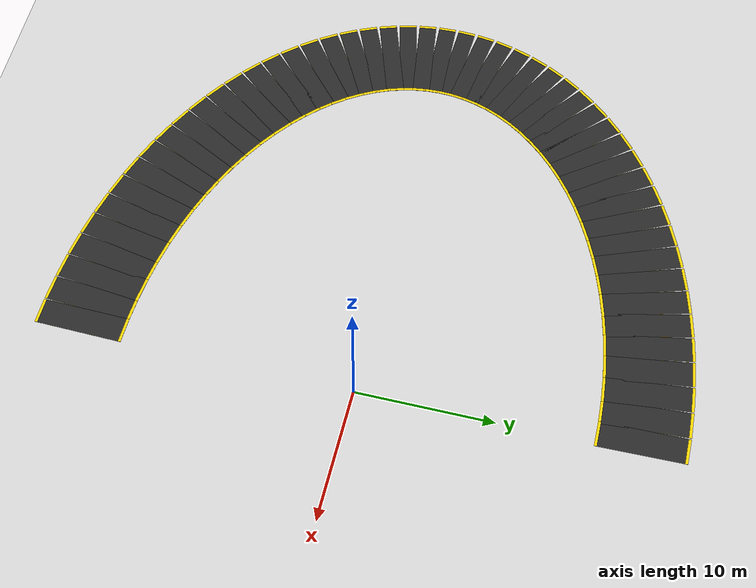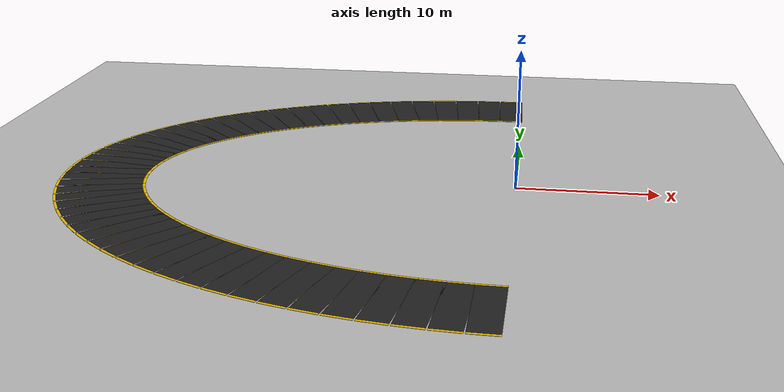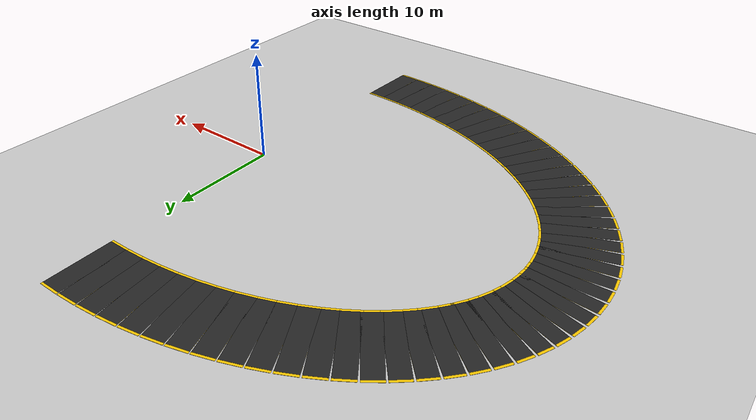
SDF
<sdf version="1.7">
 <world name="custom_road_world">
  <include><uri>https://fuel.ignitionrobotics.org/1.0/openrobotics/models/Ground Plane</uri></include>
  <include><uri>https://fuel.ignitionrobotics.org/1.0/openrobotics/models/Sun</uri></include>
  <model name="elliptical_road">
   <static>true</static>
   <link name="seg_25">
    <pose>-0.942 19.980 0.01 0 0 -3.121</pose>
    <visual name="yellow_base_25">
     <pose>0 0 0.001 0 0 0</pose>
     <geometry><box><size>1.914 6.4 0.02</size></box></geometry>
     <material>
      <ambient>1.0 0.8 0.0 1.0</ambient>
      <diffuse>1.0 0.8 0.0 1.0</diffuse>
      <specular>0.1 0.1 0.1 1.0</specular>
     </material>
    </visual>
    <visual name="asphalt_top_25">
     <pose>0 0 0.002 0 0 0</pose>
     <geometry><box><size>1.914 6.0 0.02</size></box></geometry>
     <material>
      <ambient>0.15 0.15 0.15 1.0</ambient>
      <diffuse>0.15 0.15 0.15 1.0</diffuse>
      <specular>0.05 0.05 0.05 1.0</specular>
     </material>
    </visual>
    <collision name="collision_25">
     <pose>0 0 0.002 0 0 0</pose>
     <geometry><box><size>1.914 6.0 0.02</size></box></geometry>
    </collision>
   </link>
   <link name="seg_26">
    <pose>-2.822 19.901 0.01 0 0 -3.079</pose>
    <visual name="yellow_base_26">
     <pose>0 0 0.001 0 0 0</pose>
     <geometry><box><size>1.910 6.4 0.02</size></box></geometry>
     <material>
      <ambient>1.0 0.8 0.0 1.0</ambient>
      <diffuse>1.0 0.8 0.0 1.0</diffuse>
      <specular>0.1 0.1 0.1 1.0</specular>
     </material>
    </visual>
    <visual name="asphalt_top_26">
     <pose>0 0 0.002 0 0 0</pose>
     <geometry><box><size>1.910 6.0 0.02</size></box></geometry>
     <material>
      <ambient>0.15 0.15 0.15 1.0</ambient>
      <diffuse>0.15 0.15 0.15 1.0</diffuse>
      <specular>0.05 0.05 0.05 1.0</specular>
     </material>
    </visual>
    <collision name="collision_26">
     <pose>0 0 0.002 0 0 0</pose>
     <geometry><box><size>1.910 6.0 0.02</size></box></geometry>
    </collision>
   </link>
   <link name="seg_27">
    <pose>-4.691 19.744 0.01 0 0 -3.036</pose>
    <visual name="yellow_base_27">
     <pose>0 0 0.001 0 0 0</pose>
     <geometry><box><size>1.902 6.4 0.02</size></box></geometry>
     <material>
      <ambient>1.0 0.8 0.0 1.0</ambient>
      <diffuse>1.0 0.8 0.0 1.0</diffuse>
      <specular>0.1 0.1 0.1 1.0</specular>
     </material>
    </visual>
    <visual name="asphalt_top_27">
     <pose>0 0 0.002 0 0 0</pose>
     <geometry><box><size>1.902 6.0 0.02</size></box></geometry>
     <material>
      <ambient>0.15 0.15 0.15 1.0</ambient>
      <diffuse>0.15 0.15 0.15 1.0</diffuse>
      <specular>0.05 0.05 0.05 1.0</specular>
     </material>
    </visual>
    <collision name="collision_27">
     <pose>0 0 0.002 0 0 0</pose>
     <geometry><box><size>1.902 6.0 0.02</size></box></geometry>
    </collision>
   </link>
   <link name="seg_28">
    <pose>-6.541 19.509 0.01 0 0 -2.994</pose>
    <visual name="yellow_base_28">
     <pose>0 0 0.001 0 0 0</pose>
     <geometry><box><size>1.890 6.4 0.02</size></box></geometry>
     <material>
      <ambient>1.0 0.8 0.0 1.0</ambient>
      <diffuse>1.0 0.8 0.0 1.0</diffuse>
      <specular>0.1 0.1 0.1 1.0</specular>
     </material>
    </visual>
    <visual name="asphalt_top_28">
     <pose>0 0 0.002 0 0 0</pose>
     <geometry><box><size>1.890 6.0 0.02</size></box></geometry>
     <material>
      <ambient>0.15 0.15 0.15 1.0</ambient>
      <diffuse>0.15 0.15 0.15 1.0</diffuse>
      <specular>0.05 0.05 0.05 1.0</specular>
     </material>
    </visual>
    <collision name="collision_28">
     <pose>0 0 0.002 0 0 0</pose>
     <geometry><box><size>1.890 6.0 0.02</size></box></geometry>
    </collision>
   </link>
   <link name="seg_29">
    <pose>-8.366 19.196 0.01 0 0 -2.950</pose>
    <visual name="yellow_base_29">
     <pose>0 0 0.001 0 0 0</pose>
     <geometry><box><size>1.873 6.4 0.02</size></box></geometry>
     <material>
      <ambient>1.0 0.8 0.0 1.0</ambient>
      <diffuse>1.0 0.8 0.0 1.0</diffuse>
      <specular>0.1 0.1 0.1 1.0</specular>
     </material>
    </visual>
    <visual name="asphalt_top_29">
     <pose>0 0 0.002 0 0 0</pose>
     <geometry><box><size>1.873 6.0 0.02</size></box></geometry>
     <material>
      <ambient>0.15 0.15 0.15 1.0</ambient>
      <diffuse>0.15 0.15 0.15 1.0</diffuse>
      <specular>0.05 0.05 0.05 1.0</specular>
     </material>
    </visual>
    <collision name="collision_29">
     <pose>0 0 0.002 0 0 0</pose>
     <geometry><box><size>1.873 6.0 0.02</size></box></geometry>
    </collision>
   </link>
   <link name="seg_30">
    <pose>-10.157 18.808 0.01 0 0 -2.906</pose>
    <visual name="yellow_base_30">
     <pose>0 0 0.001 0 0 0</pose>
     <geometry><box><size>1.854 6.4 0.02</size></box></geometry>
     <material>
      <ambient>1.0 0.8 0.0 1.0</ambient>
      <diffuse>1.0 0.8 0.0 1.0</diffuse>
      <specular>0.1 0.1 0.1 1.0</specular>
     </material>
    </visual>
    <visual name="asphalt_top_30">
     <pose>0 0 0.002 0 0 0</pose>
     <geometry><box><size>1.854 6.0 0.02</size></box></geometry>
     <material>
      <ambient>0.15 0.15 0.15 1.0</ambient>
      <diffuse>0.15 0.15 0.15 1.0</diffuse>
      <specular>0.05 0.05 0.05 1.0</specular>
     </material>
    </visual>
    <collision name="collision_30">
     <pose>0 0 0.002 0 0 0</pose>
     <geometry><box><size>1.854 6.0 0.02</size></box></geometry>
    </collision>
   </link>
   <link name="seg_31">
    <pose>-11.909 18.346 0.01 0 0 -2.861</pose>
    <visual name="yellow_base_31">
     <pose>0 0 0.001 0 0 0</pose>
     <geometry><box><size>1.830 6.4 0.02</size></box></geometry>
     <material>
      <ambient>1.0 0.8 0.0 1.0</ambient>
      <diffuse>1.0 0.8 0.0 1.0</diffuse>
      <specular>0.1 0.1 0.1 1.0</specular>
     </material>
    </visual>
    <visual name="asphalt_top_31">
     <pose>0 0 0.002 0 0 0</pose>
     <geometry><box><size>1.830 6.0 0.02</size></box></geometry>
     <material>
      <ambient>0.15 0.15 0.15 1.0</ambient>
      <diffuse>0.15 0.15 0.15 1.0</diffuse>
      <specular>0.05 0.05 0.05 1.0</specular>
     </material>
    </visual>
    <collision name="collision_31">
     <pose>0 0 0.002 0 0 0</pose>
     <geometry><box><size>1.830 6.0 0.02</size></box></geometry>
    </collision>
   </link>
   <link name="seg_32">
    <pose>-13.613 17.811 0.01 0 0 -2.814</pose>
    <visual name="yellow_base_32">
     <pose>0 0 0.001 0 0 0</pose>
     <geometry><box><size>1.803 6.4 0.02</size></box></geometry>
     <material>
      <ambient>1.0 0.8 0.0 1.0</ambient>
      <diffuse>1.0 0.8 0.0 1.0</diffuse>
      <specular>0.1 0.1 0.1 1.0</specular>
     </material>
    </visual>
    <visual name="asphalt_top_32">
     <pose>0 0 0.002 0 0 0</pose>
     <geometry><box><size>1.803 6.0 0.02</size></box></geometry>
     <material>
      <ambient>0.15 0.15 0.15 1.0</ambient>
      <diffuse>0.15 0.15 0.15 1.0</diffuse>
      <specular>0.05 0.05 0.05 1.0</specular>
     </material>
    </visual>
    <collision name="collision_32">
     <pose>0 0 0.002 0 0 0</pose>
     <geometry><box><size>1.803 6.0 0.02</size></box></geometry>
    </collision>
   </link>
   <link name="seg_33">
    <pose>-15.264 17.206 0.01 0 0 -2.766</pose>
    <visual name="yellow_base_33">
     <pose>0 0 0.001 0 0 0</pose>
     <geometry><box><size>1.774 6.4 0.02</size></box></geometry>
     <material>
      <ambient>1.0 0.8 0.0 1.0</ambient>
      <diffuse>1.0 0.8 0.0 1.0</diffuse>
      <specular>0.1 0.1 0.1 1.0</specular>
     </material>
    </visual>
    <visual name="asphalt_top_33">
     <pose>0 0 0.002 0 0 0</pose>
     <geometry><box><size>1.774 6.0 0.02</size></box></geometry>
     <material>
      <ambient>0.15 0.15 0.15 1.0</ambient>
      <diffuse>0.15 0.15 0.15 1.0</diffuse>
      <specular>0.05 0.05 0.05 1.0</specular>
     </material>
    </visual>
    <collision name="collision_33">
     <pose>0 0 0.002 0 0 0</pose>
     <geometry><box><size>1.774 6.0 0.02</size></box></geometry>
    </collision>
   </link>
   <link name="seg_34">
    <pose>-16.854 16.533 0.01 0 0 -2.716</pose>
    <visual name="yellow_base_34">
     <pose>0 0 0.001 0 0 0</pose>
     <geometry><box><size>1.741 6.4 0.02</size></box></geometry>
     <material>
      <ambient>1.0 0.8 0.0 1.0</ambient>
      <diffuse>1.0 0.8 0.0 1.0</diffuse>
      <specular>0.1 0.1 0.1 1.0</specular>
     </material>
    </visual>
    <visual name="asphalt_top_34">
     <pose>0 0 0.002 0 0 0</pose>
     <geometry><box><size>1.741 6.0 0.02</size></box></geometry>
     <material>
      <ambient>0.15 0.15 0.15 1.0</ambient>
      <diffuse>0.15 0.15 0.15 1.0</diffuse>
      <specular>0.05 0.05 0.05 1.0</specular>
     </material>
    </visual>
    <collision name="collision_34">
     <pose>0 0 0.002 0 0 0</pose>
     <geometry><box><size>1.741 6.0 0.02</size></box></geometry>
    </collision>
   </link>
   <link name="seg_35">
    <pose>-18.378 15.795 0.01 0 0 -2.664</pose>
    <visual name="yellow_base_35">
     <pose>0 0 0.001 0 0 0</pose>
     <geometry><box><size>1.706 6.4 0.02</size></box></geometry>
     <material>
      <ambient>1.0 0.8 0.0 1.0</ambient>
      <diffuse>1.0 0.8 0.0 1.0</diffuse>
      <specular>0.1 0.1 0.1 1.0</specular>
     </material>
    </visual>
    <visual name="asphalt_top_35">
     <pose>0 0 0.002 0 0 0</pose>
     <geometry><box><size>1.706 6.0 0.02</size></box></geometry>
     <material>
      <ambient>0.15 0.15 0.15 1.0</ambient>
      <diffuse>0.15 0.15 0.15 1.0</diffuse>
      <specular>0.05 0.05 0.05 1.0</specular>
     </material>
    </visual>
    <collision name="collision_35">
     <pose>0 0 0.002 0 0 0</pose>
     <geometry><box><size>1.706 6.0 0.02</size></box></geometry>
    </collision>
   </link>
   <link name="seg_36">
    <pose>-19.830 14.995 0.01 0 0 -2.610</pose>
    <visual name="yellow_base_36">
     <pose>0 0 0.001 0 0 0</pose>
     <geometry><box><size>1.670 6.4 0.02</size></box></geometry>
     <material>
      <ambient>1.0 0.8 0.0 1.0</ambient>
      <diffuse>1.0 0.8 0.0 1.0</diffuse>
      <specular>0.1 0.1 0.1 1.0</specular>
     </material>
    </visual>
    <visual name="asphalt_top_36">
     <pose>0 0 0.002 0 0 0</pose>
     <geometry><box><size>1.670 6.0 0.02</size></box></geometry>
     <material>
      <ambient>0.15 0.15 0.15 1.0</ambient>
      <diffuse>0.15 0.15 0.15 1.0</diffuse>
      <specular>0.05 0.05 0.05 1.0</specular>
     </material>
    </visual>
    <collision name="collision_36">
     <pose>0 0 0.002 0 0 0</pose>
     <geometry><box><size>1.670 6.0 0.02</size></box></geometry>
    </collision>
   </link>
   <link name="seg_37">
    <pose>-21.203 14.135 0.01 0 0 -2.554</pose>
    <visual name="yellow_base_37">
     <pose>0 0 0.001 0 0 0</pose>
     <geometry><box><size>1.632 6.4 0.02</size></box></geometry>
     <material>
      <ambient>1.0 0.8 0.0 1.0</ambient>
      <diffuse>1.0 0.8 0.0 1.0</diffuse>
      <specular>0.1 0.1 0.1 1.0</specular>
     </material>
    </visual>
    <visual name="asphalt_top_37">
     <pose>0 0 0.002 0 0 0</pose>
     <geometry><box><size>1.632 6.0 0.02</size></box></geometry>
     <material>
      <ambient>0.15 0.15 0.15 1.0</ambient>
      <diffuse>0.15 0.15 0.15 1.0</diffuse>
      <specular>0.05 0.05 0.05 1.0</specular>
     </material>
    </visual>
    <collision name="collision_37">
     <pose>0 0 0.002 0 0 0</pose>
     <geometry><box><size>1.632 6.0 0.02</size></box></geometry>
    </collision>
   </link>
   <link name="seg_38">
    <pose>-22.492 13.220 0.01 0 0 -2.494</pose>
    <visual name="yellow_base_38">
     <pose>0 0 0.001 0 0 0</pose>
     <geometry><box><size>1.593 6.4 0.02</size></box></geometry>
     <material>
      <ambient>1.0 0.8 0.0 1.0</ambient>
      <diffuse>1.0 0.8 0.0 1.0</diffuse>
      <specular>0.1 0.1 0.1 1.0</specular>
     </material>
    </visual>
    <visual name="asphalt_top_38">
     <pose>0 0 0.002 0 0 0</pose>
     <geometry><box><size>1.593 6.0 0.02</size></box></geometry>
     <material>
      <ambient>0.15 0.15 0.15 1.0</ambient>
      <diffuse>0.15 0.15 0.15 1.0</diffuse>
      <specular>0.05 0.05 0.05 1.0</specular>
     </material>
    </visual>
    <collision name="collision_38">
     <pose>0 0 0.002 0 0 0</pose>
     <geometry><box><size>1.593 6.0 0.02</size></box></geometry>
    </collision>
   </link>
   <link name="seg_39">
    <pose>-23.693 12.252 0.01 0 0 -2.432</pose>
    <visual name="yellow_base_39">
     <pose>0 0 0.001 0 0 0</pose>
     <geometry><box><size>1.553 6.4 0.02</size></box></geometry>
     <material>
      <ambient>1.0 0.8 0.0 1.0</ambient>
      <diffuse>1.0 0.8 0.0 1.0</diffuse>
      <specular>0.1 0.1 0.1 1.0</specular>
     </material>
    </visual>
    <visual name="asphalt_top_39">
     <pose>0 0 0.002 0 0 0</pose>
     <geometry><box><size>1.553 6.0 0.02</size></box></geometry>
     <material>
      <ambient>0.15 0.15 0.15 1.0</ambient>
      <diffuse>0.15 0.15 0.15 1.0</diffuse>
      <specular>0.05 0.05 0.05 1.0</specular>
     </material>
    </visual>
    <collision name="collision_39">
     <pose>0 0 0.002 0 0 0</pose>
     <geometry><box><size>1.553 6.0 0.02</size></box></geometry>
    </collision>
   </link>
   <link name="seg_40">
    <pose>-24.800 11.236 0.01 0 0 -2.366</pose>
    <visual name="yellow_base_40">
     <pose>0 0 0.001 0 0 0</pose>
     <geometry><box><size>1.514 6.4 0.02</size></box></geometry>
     <material>
      <ambient>1.0 0.8 0.0 1.0</ambient>
      <diffuse>1.0 0.8 0.0 1.0</diffuse>
      <specular>0.1 0.1 0.1 1.0</specular>
     </material>
    </visual>
    <visual name="asphalt_top_40">
     <pose>0 0 0.002 0 0 0</pose>
     <geometry><box><size>1.514 6.0 0.02</size></box></geometry>
     <material>
      <ambient>0.15 0.15 0.15 1.0</ambient>
      <diffuse>0.15 0.15 0.15 1.0</diffuse>
      <specular>0.05 0.05 0.05 1.0</specular>
     </material>
    </visual>
    <collision name="collision_40">
     <pose>0 0 0.002 0 0 0</pose>
     <geometry><box><size>1.514 6.0 0.02</size></box></geometry>
    </collision>
   </link>
   <link name="seg_41">
    <pose>-25.810 10.176 0.01 0 0 -2.296</pose>
    <visual name="yellow_base_41">
     <pose>0 0 0.001 0 0 0</pose>
     <geometry><box><size>1.476 6.4 0.02</size></box></geometry>
     <material>
      <ambient>1.0 0.8 0.0 1.0</ambient>
      <diffuse>1.0 0.8 0.0 1.0</diffuse>
      <specular>0.1 0.1 0.1 1.0</specular>
     </material>
    </visual>
    <visual name="asphalt_top_41">
     <pose>0 0 0.002 0 0 0</pose>
     <geometry><box><size>1.476 6.0 0.02</size></box></geometry>
     <material>
      <ambient>0.15 0.15 0.15 1.0</ambient>
      <diffuse>0.15 0.15 0.15 1.0</diffuse>
      <specular>0.05 0.05 0.05 1.0</specular>
     </material>
    </visual>
    <collision name="collision_41">
     <pose>0 0 0.002 0 0 0</pose>
     <geometry><box><size>1.476 6.0 0.02</size></box></geometry>
    </collision>
   </link>
   <link name="seg_42">
    <pose>-26.717 9.075 0.01 0 0 -2.223</pose>
    <visual name="yellow_base_42">
     <pose>0 0 0.001 0 0 0</pose>
     <geometry><box><size>1.439 6.4 0.02</size></box></geometry>
     <material>
      <ambient>1.0 0.8 0.0 1.0</ambient>
      <diffuse>1.0 0.8 0.0 1.0</diffuse>
      <specular>0.1 0.1 0.1 1.0</specular>
     </material>
    </visual>
    <visual name="asphalt_top_42">
     <pose>0 0 0.002 0 0 0</pose>
     <geometry><box><size>1.439 6.0 0.02</size></box></geometry>
     <material>
      <ambient>0.15 0.15 0.15 1.0</ambient>
      <diffuse>0.15 0.15 0.15 1.0</diffuse>
      <specular>0.05 0.05 0.05 1.0</specular>
     </material>
    </visual>
    <collision name="collision_42">
     <pose>0 0 0.002 0 0 0</pose>
     <geometry><box><size>1.439 6.0 0.02</size></box></geometry>
    </collision>
   </link>
   <link name="seg_43">
    <pose>-27.519 7.939 0.01 0 0 -2.147</pose>
    <visual name="yellow_base_43">
     <pose>0 0 0.001 0 0 0</pose>
     <geometry><box><size>1.405 6.4 0.02</size></box></geometry>
     <material>
      <ambient>1.0 0.8 0.0 1.0</ambient>
      <diffuse>1.0 0.8 0.0 1.0</diffuse>
      <specular>0.1 0.1 0.1 1.0</specular>
     </material>
    </visual>
    <visual name="asphalt_top_43">
     <pose>0 0 0.002 0 0 0</pose>
     <geometry><box><size>1.405 6.0 0.02</size></box></geometry>
     <material>
      <ambient>0.15 0.15 0.15 1.0</ambient>
      <diffuse>0.15 0.15 0.15 1.0</diffuse>
      <specular>0.05 0.05 0.05 1.0</specular>
     </material>
    </visual>
    <collision name="collision_43">
     <pose>0 0 0.002 0 0 0</pose>
     <geometry><box><size>1.405 6.0 0.02</size></box></geometry>
    </collision>
   </link>
   <link name="seg_44">
    <pose>-28.212 6.771 0.01 0 0 -2.066</pose>
    <visual name="yellow_base_44">
     <pose>0 0 0.001 0 0 0</pose>
     <geometry><box><size>1.374 6.4 0.02</size></box></geometry>
     <material>
      <ambient>1.0 0.8 0.0 1.0</ambient>
      <diffuse>1.0 0.8 0.0 1.0</diffuse>
      <specular>0.1 0.1 0.1 1.0</specular>
     </material>
    </visual>
    <visual name="asphalt_top_44">
     <pose>0 0 0.002 0 0 0</pose>
     <geometry><box><size>1.374 6.0 0.02</size></box></geometry>
     <material>
      <ambient>0.15 0.15 0.15 1.0</ambient>
      <diffuse>0.15 0.15 0.15 1.0</diffuse>
      <specular>0.05 0.05 0.05 1.0</specular>
     </material>
    </visual>
    <collision name="collision_44">
     <pose>0 0 0.002 0 0 0</pose>
     <geometry><box><size>1.374 6.0 0.02</size></box></geometry>
    </collision>
   </link>
   <link name="seg_45">
    <pose>-28.795 5.577 0.01 0 0 -1.982</pose>
    <visual name="yellow_base_45">
     <pose>0 0 0.001 0 0 0</pose>
     <geometry><box><size>1.346 6.4 0.02</size></box></geometry>
     <material>
      <ambient>1.0 0.8 0.0 1.0</ambient>
      <diffuse>1.0 0.8 0.0 1.0</diffuse>
      <specular>0.1 0.1 0.1 1.0</specular>
     </material>
    </visual>
    <visual name="asphalt_top_45">
     <pose>0 0 0.002 0 0 0</pose>
     <geometry><box><size>1.346 6.0 0.02</size></box></geometry>
     <material>
      <ambient>0.15 0.15 0.15 1.0</ambient>
      <diffuse>0.15 0.15 0.15 1.0</diffuse>
      <specular>0.05 0.05 0.05 1.0</specular>
     </material>
    </visual>
    <collision name="collision_45">
     <pose>0 0 0.002 0 0 0</pose>
     <geometry><box><size>1.346 6.0 0.02</size></box></geometry>
    </collision>
   </link>
   <link name="seg_46">
    <pose>-29.263 4.361 0.01 0 0 -1.894</pose>
    <visual name="yellow_base_46">
     <pose>0 0 0.001 0 0 0</pose>
     <geometry><box><size>1.323 6.4 0.02</size></box></geometry>
     <material>
      <ambient>1.0 0.8 0.0 1.0</ambient>
      <diffuse>1.0 0.8 0.0 1.0</diffuse>
      <specular>0.1 0.1 0.1 1.0</specular>
     </material>
    </visual>
    <visual name="asphalt_top_46">
     <pose>0 0 0.002 0 0 0</pose>
     <geometry><box><size>1.323 6.0 0.02</size></box></geometry>
     <material>
      <ambient>0.15 0.15 0.15 1.0</ambient>
      <diffuse>0.15 0.15 0.15 1.0</diffuse>
      <specular>0.05 0.05 0.05 1.0</specular>
     </material>
    </visual>
    <collision name="collision_46">
     <pose>0 0 0.002 0 0 0</pose>
     <geometry><box><size>1.323 6.0 0.02</size></box></geometry>
    </collision>
   </link>
   <link name="seg_47">
    <pose>-29.616 3.127 0.01 0 0 -1.804</pose>
    <visual name="yellow_base_47">
     <pose>0 0 0.001 0 0 0</pose>
     <geometry><box><size>1.306 6.4 0.02</size></box></geometry>
     <material>
      <ambient>1.0 0.8 0.0 1.0</ambient>
      <diffuse>1.0 0.8 0.0 1.0</diffuse>
      <specular>0.1 0.1 0.1 1.0</specular>
     </material>
    </visual>
    <visual name="asphalt_top_47">
     <pose>0 0 0.002 0 0 0</pose>
     <geometry><box><size>1.306 6.0 0.02</size></box></geometry>
     <material>
      <ambient>0.15 0.15 0.15 1.0</ambient>
      <diffuse>0.15 0.15 0.15 1.0</diffuse>
      <specular>0.05 0.05 0.05 1.0</specular>
     </material>
    </visual>
    <collision name="collision_47">
     <pose>0 0 0.002 0 0 0</pose>
     <geometry><box><size>1.306 6.0 0.02</size></box></geometry>
    </collision>
   </link>
   <link name="seg_48">
    <pose>-29.852 1.881 0.01 0 0 -1.712</pose>
    <visual name="yellow_base_48">
     <pose>0 0 0.001 0 0 0</pose>
     <geometry><box><size>1.293 6.4 0.02</size></box></geometry>
     <material>
      <ambient>1.0 0.8 0.0 1.0</ambient>
      <diffuse>1.0 0.8 0.0 1.0</diffuse>
      <specular>0.1 0.1 0.1 1.0</specular>
     </material>
    </visual>
    <visual name="asphalt_top_48">
     <pose>0 0 0.002 0 0 0</pose>
     <geometry><box><size>1.293 6.0 0.02</size></box></geometry>
     <material>
      <ambient>0.15 0.15 0.15 1.0</ambient>
      <diffuse>0.15 0.15 0.15 1.0</diffuse>
      <specular>0.05 0.05 0.05 1.0</specular>
     </material>
    </visual>
    <collision name="collision_48">
     <pose>0 0 0.002 0 0 0</pose>
     <geometry><box><size>1.293 6.0 0.02</size></box></geometry>
    </collision>
   </link>
   <link name="seg_49">
    <pose>-29.970 0.628 0.01 0 0 -1.618</pose>
    <visual name="yellow_base_49">
     <pose>0 0 0.001 0 0 0</pose>
     <geometry><box><size>1.287 6.4 0.02</size></box></geometry>
     <material>
      <ambient>1.0 0.8 0.0 1.0</ambient>
      <diffuse>1.0 0.8 0.0 1.0</diffuse>
      <specular>0.1 0.1 0.1 1.0</specular>
     </material>
    </visual>
    <visual name="asphalt_top_49">
     <pose>0 0 0.002 0 0 0</pose>
     <geometry><box><size>1.287 6.0 0.02</size></box></geometry>
     <material>
      <ambient>0.15 0.15 0.15 1.0</ambient>
      <diffuse>0.15 0.15 0.15 1.0</diffuse>
      <specular>0.05 0.05 0.05 1.0</specular>
     </material>
    </visual>
    <collision name="collision_49">
     <pose>0 0 0.002 0 0 0</pose>
     <geometry><box><size>1.287 6.0 0.02</size></box></geometry>
    </collision>
   </link>
   <link name="seg_50">
    <pose>-29.970 -0.628 0.01 0 0 -1.524</pose>
    <visual name="yellow_base_50">
     <pose>0 0 0.001 0 0 0</pose>
     <geometry><box><size>1.287 6.4 0.02</size></box></geometry>
     <material>
      <ambient>1.0 0.8 0.0 1.0</ambient>
      <diffuse>1.0 0.8 0.0 1.0</diffuse>
      <specular>0.1 0.1 0.1 1.0</specular>
     </material>
    </visual>
    <visual name="asphalt_top_50">
     <pose>0 0 0.002 0 0 0</pose>
     <geometry><box><size>1.287 6.0 0.02</size></box></geometry>
     <material>
      <ambient>0.15 0.15 0.15 1.0</ambient>
      <diffuse>0.15 0.15 0.15 1.0</diffuse>
      <specular>0.05 0.05 0.05 1.0</specular>
     </material>
    </visual>
    <collision name="collision_50">
     <pose>0 0 0.002 0 0 0</pose>
     <geometry><box><size>1.287 6.0 0.02</size></box></geometry>
    </collision>
   </link>
   <link name="seg_51">
    <pose>-29.852 -1.881 0.01 0 0 -1.430</pose>
    <visual name="yellow_base_51">
     <pose>0 0 0.001 0 0 0</pose>
     <geometry><box><size>1.293 6.4 0.02</size></box></geometry>
     <material>
      <ambient>1.0 0.8 0.0 1.0</ambient>
      <diffuse>1.0 0.8 0.0 1.0</diffuse>
      <specular>0.1 0.1 0.1 1.0</specular>
     </material>
    </visual>
    <visual name="asphalt_top_51">
     <pose>0 0 0.002 0 0 0</pose>
     <geometry><box><size>1.293 6.0 0.02</size></box></geometry>
     <material>
      <ambient>0.15 0.15 0.15 1.0</ambient>
      <diffuse>0.15 0.15 0.15 1.0</diffuse>
      <specular>0.05 0.05 0.05 1.0</specular>
     </material>
    </visual>
    <collision name="collision_51">
     <pose>0 0 0.002 0 0 0</pose>
     <geometry><box><size>1.293 6.0 0.02</size></box></geometry>
    </collision>
   </link>
   <link name="seg_52">
    <pose>-29.616 -3.127 0.01 0 0 -1.338</pose>
    <visual name="yellow_base_52">
     <pose>0 0 0.001 0 0 0</pose>
     <geometry><box><size>1.306 6.4 0.02</size></box></geometry>
     <material>
      <ambient>1.0 0.8 0.0 1.0</ambient>
      <diffuse>1.0 0.8 0.0 1.0</diffuse>
      <specular>0.1 0.1 0.1 1.0</specular>
     </material>
    </visual>
    <visual name="asphalt_top_52">
     <pose>0 0 0.002 0 0 0</pose>
     <geometry><box><size>1.306 6.0 0.02</size></box></geometry>
     <material>
      <ambient>0.15 0.15 0.15 1.0</ambient>
      <diffuse>0.15 0.15 0.15 1.0</diffuse>
      <specular>0.05 0.05 0.05 1.0</specular>
     </material>
    </visual>
    <collision name="collision_52">
     <pose>0 0 0.002 0 0 0</pose>
     <geometry><box><size>1.306 6.0 0.02</size></box></geometry>
    </collision>
   </link>
   <link name="seg_53">
    <pose>-29.263 -4.361 0.01 0 0 -1.247</pose>
    <visual name="yellow_base_53">
     <pose>0 0 0.001 0 0 0</pose>
     <geometry><box><size>1.323 6.4 0.02</size></box></geometry>
     <material>
      <ambient>1.0 0.8 0.0 1.0</ambient>
      <diffuse>1.0 0.8 0.0 1.0</diffuse>
      <specular>0.1 0.1 0.1 1.0</specular>
     </material>
    </visual>
    <visual name="asphalt_top_53">
     <pose>0 0 0.002 0 0 0</pose>
     <geometry><box><size>1.323 6.0 0.02</size></box></geometry>
     <material>
      <ambient>0.15 0.15 0.15 1.0</ambient>
      <diffuse>0.15 0.15 0.15 1.0</diffuse>
      <specular>0.05 0.05 0.05 1.0</specular>
     </material>
    </visual>
    <collision name="collision_53">
     <pose>0 0 0.002 0 0 0</pose>
     <geometry><box><size>1.323 6.0 0.02</size></box></geometry>
    </collision>
   </link>
   <link name="seg_54">
    <pose>-28.795 -5.577 0.01 0 0 -1.160</pose>
    <visual name="yellow_base_54">
     <pose>0 0 0.001 0 0 0</pose>
     <geometry><box><size>1.346 6.4 0.02</size></box></geometry>
     <material>
      <ambient>1.0 0.8 0.0 1.0</ambient>
      <diffuse>1.0 0.8 0.0 1.0</diffuse>
      <specular>0.1 0.1 0.1 1.0</specular>
     </material>
    </visual>
    <visual name="asphalt_top_54">
     <pose>0 0 0.002 0 0 0</pose>
     <geometry><box><size>1.346 6.0 0.02</size></box></geometry>
     <material>
      <ambient>0.15 0.15 0.15 1.0</ambient>
      <diffuse>0.15 0.15 0.15 1.0</diffuse>
      <specular>0.05 0.05 0.05 1.0</specular>
     </material>
    </visual>
    <collision name="collision_54">
     <pose>0 0 0.002 0 0 0</pose>
     <geometry><box><size>1.346 6.0 0.02</size></box></geometry>
    </collision>
   </link>
   <link name="seg_55">
    <pose>-28.212 -6.771 0.01 0 0 -1.076</pose>
    <visual name="yellow_base_55">
     <pose>0 0 0.001 0 0 0</pose>
     <geometry><box><size>1.374 6.4 0.02</size></box></geometry>
     <material>
      <ambient>1.0 0.8 0.0 1.0</ambient>
      <diffuse>1.0 0.8 0.0 1.0</diffuse>
      <specular>0.1 0.1 0.1 1.0</specular>
     </material>
    </visual>
    <visual name="asphalt_top_55">
     <pose>0 0 0.002 0 0 0</pose>
     <geometry><box><size>1.374 6.0 0.02</size></box></geometry>
     <material>
      <ambient>0.15 0.15 0.15 1.0</ambient>
      <diffuse>0.15 0.15 0.15 1.0</diffuse>
      <specular>0.05 0.05 0.05 1.0</specular>
     </material>
    </visual>
    <collision name="collision_55">
     <pose>0 0 0.002 0 0 0</pose>
     <geometry><box><size>1.374 6.0 0.02</size></box></geometry>
    </collision>
   </link>
   <link name="seg_56">
    <pose>-27.519 -7.939 0.01 0 0 -0.995</pose>
    <visual name="yellow_base_56">
     <pose>0 0 0.001 0 0 0</pose>
     <geometry><box><size>1.405 6.4 0.02</size></box></geometry>
     <material>
      <ambient>1.0 0.8 0.0 1.0</ambient>
      <diffuse>1.0 0.8 0.0 1.0</diffuse>
      <specular>0.1 0.1 0.1 1.0</specular>
     </material>
    </visual>
    <visual name="asphalt_top_56">
     <pose>0 0 0.002 0 0 0</pose>
     <geometry><box><size>1.405 6.0 0.02</size></box></geometry>
     <material>
      <ambient>0.15 0.15 0.15 1.0</ambient>
      <diffuse>0.15 0.15 0.15 1.0</diffuse>
      <specular>0.05 0.05 0.05 1.0</specular>
     </material>
    </visual>
    <collision name="collision_56">
     <pose>0 0 0.002 0 0 0</pose>
     <geometry><box><size>1.405 6.0 0.02</size></box></geometry>
    </collision>
   </link>
   <link name="seg_57">
    <pose>-26.717 -9.075 0.01 0 0 -0.918</pose>
    <visual name="yellow_base_57">
     <pose>0 0 0.001 0 0 0</pose>
     <geometry><box><size>1.439 6.4 0.02</size></box></geometry>
     <material>
      <ambient>1.0 0.8 0.0 1.0</ambient>
      <diffuse>1.0 0.8 0.0 1.0</diffuse>
      <specular>0.1 0.1 0.1 1.0</specular>
     </material>
    </visual>
    <visual name="asphalt_top_57">
     <pose>0 0 0.002 0 0 0</pose>
     <geometry><box><size>1.439 6.0 0.02</size></box></geometry>
     <material>
      <ambient>0.15 0.15 0.15 1.0</ambient>
      <diffuse>0.15 0.15 0.15 1.0</diffuse>
      <specular>0.05 0.05 0.05 1.0</specular>
     </material>
    </visual>
    <collision name="collision_57">
     <pose>0 0 0.002 0 0 0</pose>
     <geometry><box><size>1.439 6.0 0.02</size></box></geometry>
    </collision>
   </link>
   <link name="seg_58">
    <pose>-25.810 -10.176 0.01 0 0 -0.845</pose>
    <visual name="yellow_base_58">
     <pose>0 0 0.001 0 0 0</pose>
     <geometry><box><size>1.476 6.4 0.02</size></box></geometry>
     <material>
      <ambient>1.0 0.8 0.0 1.0</ambient>
      <diffuse>1.0 0.8 0.0 1.0</diffuse>
      <specular>0.1 0.1 0.1 1.0</specular>
     </material>
    </visual>
    <visual name="asphalt_top_58">
     <pose>0 0 0.002 0 0 0</pose>
     <geometry><box><size>1.476 6.0 0.02</size></box></geometry>
     <material>
      <ambient>0.15 0.15 0.15 1.0</ambient>
      <diffuse>0.15 0.15 0.15 1.0</diffuse>
      <specular>0.05 0.05 0.05 1.0</specular>
     </material>
    </visual>
    <collision name="collision_58">
     <pose>0 0 0.002 0 0 0</pose>
     <geometry><box><size>1.476 6.0 0.02</size></box></geometry>
    </collision>
   </link>
   <link name="seg_59">
    <pose>-24.800 -11.236 0.01 0 0 -0.776</pose>
    <visual name="yellow_base_59">
     <pose>0 0 0.001 0 0 0</pose>
     <geometry><box><size>1.514 6.4 0.02</size></box></geometry>
     <material>
      <ambient>1.0 0.8 0.0 1.0</ambient>
      <diffuse>1.0 0.8 0.0 1.0</diffuse>
      <specular>0.1 0.1 0.1 1.0</specular>
     </material>
    </visual>
    <visual name="asphalt_top_59">
     <pose>0 0 0.002 0 0 0</pose>
     <geometry><box><size>1.514 6.0 0.02</size></box></geometry>
     <material>
      <ambient>0.15 0.15 0.15 1.0</ambient>
      <diffuse>0.15 0.15 0.15 1.0</diffuse>
      <specular>0.05 0.05 0.05 1.0</specular>
     </material>
    </visual>
    <collision name="collision_59">
     <pose>0 0 0.002 0 0 0</pose>
     <geometry><box><size>1.514 6.0 0.02</size></box></geometry>
    </collision>
   </link>
   <link name="seg_60">
    <pose>-23.693 -12.252 0.01 0 0 -0.710</pose>
    <visual name="yellow_base_60">
     <pose>0 0 0.001 0 0 0</pose>
     <geometry><box><size>1.553 6.4 0.02</size></box></geometry>
     <material>
      <ambient>1.0 0.8 0.0 1.0</ambient>
      <diffuse>1.0 0.8 0.0 1.0</diffuse>
      <specular>0.1 0.1 0.1 1.0</specular>
     </material>
    </visual>
    <visual name="asphalt_top_60">
     <pose>0 0 0.002 0 0 0</pose>
     <geometry><box><size>1.553 6.0 0.02</size></box></geometry>
     <material>
      <ambient>0.15 0.15 0.15 1.0</ambient>
      <diffuse>0.15 0.15 0.15 1.0</diffuse>
      <specular>0.05 0.05 0.05 1.0</specular>
     </material>
    </visual>
    <collision name="collision_60">
     <pose>0 0 0.002 0 0 0</pose>
     <geometry><box><size>1.553 6.0 0.02</size></box></geometry>
    </collision>
   </link>
   <link name="seg_61">
    <pose>-22.492 -13.220 0.01 0 0 -0.647</pose>
    <visual name="yellow_base_61">
     <pose>0 0 0.001 0 0 0</pose>
     <geometry><box><size>1.593 6.4 0.02</size></box></geometry>
     <material>
      <ambient>1.0 0.8 0.0 1.0</ambient>
      <diffuse>1.0 0.8 0.0 1.0</diffuse>
      <specular>0.1 0.1 0.1 1.0</specular>
     </material>
    </visual>
    <visual name="asphalt_top_61">
     <pose>0 0 0.002 0 0 0</pose>
     <geometry><box><size>1.593 6.0 0.02</size></box></geometry>
     <material>
      <ambient>0.15 0.15 0.15 1.0</ambient>
      <diffuse>0.15 0.15 0.15 1.0</diffuse>
      <specular>0.05 0.05 0.05 1.0</specular>
     </material>
    </visual>
    <collision name="collision_61">
     <pose>0 0 0.002 0 0 0</pose>
     <geometry><box><size>1.593 6.0 0.02</size></box></geometry>
    </collision>
   </link>
   <link name="seg_62">
    <pose>-21.203 -14.135 0.01 0 0 -0.588</pose>
    <visual name="yellow_base_62">
     <pose>0 0 0.001 0 0 0</pose>
     <geometry><box><size>1.632 6.4 0.02</size></box></geometry>
     <material>
      <ambient>1.0 0.8 0.0 1.0</ambient>
      <diffuse>1.0 0.8 0.0 1.0</diffuse>
      <specular>0.1 0.1 0.1 1.0</specular>
     </material>
    </visual>
    <visual name="asphalt_top_62">
     <pose>0 0 0.002 0 0 0</pose>
     <geometry><box><size>1.632 6.0 0.02</size></box></geometry>
     <material>
      <ambient>0.15 0.15 0.15 1.0</ambient>
      <diffuse>0.15 0.15 0.15 1.0</diffuse>
      <specular>0.05 0.05 0.05 1.0</specular>
     </material>
    </visual>
    <collision name="collision_62">
     <pose>0 0 0.002 0 0 0</pose>
     <geometry><box><size>1.632 6.0 0.02</size></box></geometry>
    </collision>
   </link>
   <link name="seg_63">
    <pose>-19.830 -14.995 0.01 0 0 -0.531</pose>
    <visual name="yellow_base_63">
     <pose>0 0 0.001 0 0 0</pose>
     <geometry><box><size>1.670 6.4 0.02</size></box></geometry>
     <material>
      <ambient>1.0 0.8 0.0 1.0</ambient>
      <diffuse>1.0 0.8 0.0 1.0</diffuse>
      <specular>0.1 0.1 0.1 1.0</specular>
     </material>
    </visual>
    <visual name="asphalt_top_63">
     <pose>0 0 0.002 0 0 0</pose>
     <geometry><box><size>1.670 6.0 0.02</size></box></geometry>
     <material>
      <ambient>0.15 0.15 0.15 1.0</ambient>
      <diffuse>0.15 0.15 0.15 1.0</diffuse>
      <specular>0.05 0.05 0.05 1.0</specular>
     </material>
    </visual>
    <collision name="collision_63">
     <pose>0 0 0.002 0 0 0</pose>
     <geometry><box><size>1.670 6.0 0.02</size></box></geometry>
    </collision>
   </link>
   <link name="seg_64">
    <pose>-18.378 -15.795 0.01 0 0 -0.477</pose>
    <visual name="yellow_base_64">
     <pose>0 0 0.001 0 0 0</pose>
     <geometry><box><size>1.706 6.4 0.02</size></box></geometry>
     <material>
      <ambient>1.0 0.8 0.0 1.0</ambient>
      <diffuse>1.0 0.8 0.0 1.0</diffuse>
      <specular>0.1 0.1 0.1 1.0</specular>
     </material>
    </visual>
    <visual name="asphalt_top_64">
     <pose>0 0 0.002 0 0 0</pose>
     <geometry><box><size>1.706 6.0 0.02</size></box></geometry>
     <material>
      <ambient>0.15 0.15 0.15 1.0</ambient>
      <diffuse>0.15 0.15 0.15 1.0</diffuse>
      <specular>0.05 0.05 0.05 1.0</specular>
     </material>
    </visual>
    <collision name="collision_64">
     <pose>0 0 0.002 0 0 0</pose>
     <geometry><box><size>1.706 6.0 0.02</size></box></geometry>
    </collision>
   </link>
   <link name="seg_65">
    <pose>-16.854 -16.533 0.01 0 0 -0.425</pose>
    <visual name="yellow_base_65">
     <pose>0 0 0.001 0 0 0</pose>
     <geometry><box><size>1.741 6.4 0.02</size></box></geometry>
     <material>
      <ambient>1.0 0.8 0.0 1.0</ambient>
      <diffuse>1.0 0.8 0.0 1.0</diffuse>
      <specular>0.1 0.1 0.1 1.0</specular>
     </material>
    </visual>
    <visual name="asphalt_top_65">
     <pose>0 0 0.002 0 0 0</pose>
     <geometry><box><size>1.741 6.0 0.02</size></box></geometry>
     <material>
      <ambient>0.15 0.15 0.15 1.0</ambient>
      <diffuse>0.15 0.15 0.15 1.0</diffuse>
      <specular>0.05 0.05 0.05 1.0</specular>
     </material>
    </visual>
    <collision name="collision_65">
     <pose>0 0 0.002 0 0 0</pose>
     <geometry><box><size>1.741 6.0 0.02</size></box></geometry>
    </collision>
   </link>
   <link name="seg_66">
    <pose>-15.264 -17.206 0.01 0 0 -0.376</pose>
    <visual name="yellow_base_66">
     <pose>0 0 0.001 0 0 0</pose>
     <geometry><box><size>1.774 6.4 0.02</size></box></geometry>
     <material>
      <ambient>1.0 0.8 0.0 1.0</ambient>
      <diffuse>1.0 0.8 0.0 1.0</diffuse>
      <specular>0.1 0.1 0.1 1.0</specular>
     </material>
    </visual>
    <visual name="asphalt_top_66">
     <pose>0 0 0.002 0 0 0</pose>
     <geometry><box><size>1.774 6.0 0.02</size></box></geometry>
     <material>
      <ambient>0.15 0.15 0.15 1.0</ambient>
      <diffuse>0.15 0.15 0.15 1.0</diffuse>
      <specular>0.05 0.05 0.05 1.0</specular>
     </material>
    </visual>
    <collision name="collision_66">
     <pose>0 0 0.002 0 0 0</pose>
     <geometry><box><size>1.774 6.0 0.02</size></box></geometry>
    </collision>
   </link>
   <link name="seg_67">
    <pose>-13.613 -17.811 0.01 0 0 -0.327</pose>
    <visual name="yellow_base_67">
     <pose>0 0 0.001 0 0 0</pose>
     <geometry><box><size>1.803 6.4 0.02</size></box></geometry>
     <material>
      <ambient>1.0 0.8 0.0 1.0</ambient>
      <diffuse>1.0 0.8 0.0 1.0</diffuse>
      <specular>0.1 0.1 0.1 1.0</specular>
     </material>
    </visual>
    <visual name="asphalt_top_67">
     <pose>0 0 0.002 0 0 0</pose>
     <geometry><box><size>1.803 6.0 0.02</size></box></geometry>
     <material>
      <ambient>0.15 0.15 0.15 1.0</ambient>
      <diffuse>0.15 0.15 0.15 1.0</diffuse>
      <specular>0.05 0.05 0.05 1.0</specular>
     </material>
    </visual>
    <collision name="collision_67">
     <pose>0 0 0.002 0 0 0</pose>
     <geometry><box><size>1.803 6.0 0.02</size></box></geometry>
    </collision>
   </link>
   <link name="seg_68">
    <pose>-11.909 -18.346 0.01 0 0 -0.281</pose>
    <visual name="yellow_base_68">
     <pose>0 0 0.001 0 0 0</pose>
     <geometry><box><size>1.830 6.4 0.02</size></box></geometry>
     <material>
      <ambient>1.0 0.8 0.0 1.0</ambient>
      <diffuse>1.0 0.8 0.0 1.0</diffuse>
      <specular>0.1 0.1 0.1 1.0</specular>
     </material>
    </visual>
    <visual name="asphalt_top_68">
     <pose>0 0 0.002 0 0 0</pose>
     <geometry><box><size>1.830 6.0 0.02</size></box></geometry>
     <material>
      <ambient>0.15 0.15 0.15 1.0</ambient>
      <diffuse>0.15 0.15 0.15 1.0</diffuse>
      <specular>0.05 0.05 0.05 1.0</specular>
     </material>
    </visual>
    <collision name="collision_68">
     <pose>0 0 0.002 0 0 0</pose>
     <geometry><box><size>1.830 6.0 0.02</size></box></geometry>
    </collision>
   </link>
   <link name="seg_69">
    <pose>-10.157 -18.808 0.01 0 0 -0.236</pose>
    <visual name="yellow_base_69">
     <pose>0 0 0.001 0 0 0</pose>
     <geometry><box><size>1.854 6.4 0.02</size></box></geometry>
     <material>
      <ambient>1.0 0.8 0.0 1.0</ambient>
      <diffuse>1.0 0.8 0.0 1.0</diffuse>
      <specular>0.1 0.1 0.1 1.0</specular>
     </material>
    </visual>
    <visual name="asphalt_top_69">
     <pose>0 0 0.002 0 0 0</pose>
     <geometry><box><size>1.854 6.0 0.02</size></box></geometry>
     <material>
      <ambient>0.15 0.15 0.15 1.0</ambient>
      <diffuse>0.15 0.15 0.15 1.0</diffuse>
      <specular>0.05 0.05 0.05 1.0</specular>
     </material>
    </visual>
    <collision name="collision_69">
     <pose>0 0 0.002 0 0 0</pose>
     <geometry><box><size>1.854 6.0 0.02</size></box></geometry>
    </collision>
   </link>
   <link name="seg_70">
    <pose>-8.366 -19.196 0.01 0 0 -0.191</pose>
    <visual name="yellow_base_70">
     <pose>0 0 0.001 0 0 0</pose>
     <geometry><box><size>1.873 6.4 0.02</size></box></geometry>
     <material>
      <ambient>1.0 0.8 0.0 1.0</ambient>
      <diffuse>1.0 0.8 0.0 1.0</diffuse>
      <specular>0.1 0.1 0.1 1.0</specular>
     </material>
    </visual>
    <visual name="asphalt_top_70">
     <pose>0 0 0.002 0 0 0</pose>
     <geometry><box><size>1.873 6.0 0.02</size></box></geometry>
     <material>
      <ambient>0.15 0.15 0.15 1.0</ambient>
      <diffuse>0.15 0.15 0.15 1.0</diffuse>
      <specular>0.05 0.05 0.05 1.0</specular>
     </material>
    </visual>
    <collision name="collision_70">
     <pose>0 0 0.002 0 0 0</pose>
     <geometry><box><size>1.873 6.0 0.02</size></box></geometry>
    </collision>
   </link>
   <link name="seg_71">
    <pose>-6.541 -19.509 0.01 0 0 -0.148</pose>
    <visual name="yellow_base_71">
     <pose>0 0 0.001 0 0 0</pose>
     <geometry><box><size>1.890 6.4 0.02</size></box></geometry>
     <material>
      <ambient>1.0 0.8 0.0 1.0</ambient>
      <diffuse>1.0 0.8 0.0 1.0</diffuse>
      <specular>0.1 0.1 0.1 1.0</specular>
     </material>
    </visual>
    <visual name="asphalt_top_71">
     <pose>0 0 0.002 0 0 0</pose>
     <geometry><box><size>1.890 6.0 0.02</size></box></geometry>
     <material>
      <ambient>0.15 0.15 0.15 1.0</ambient>
      <diffuse>0.15 0.15 0.15 1.0</diffuse>
      <specular>0.05 0.05 0.05 1.0</specular>
     </material>
    </visual>
    <collision name="collision_71">
     <pose>0 0 0.002 0 0 0</pose>
     <geometry><box><size>1.890 6.0 0.02</size></box></geometry>
    </collision>
   </link>
   <link name="seg_72">
    <pose>-4.691 -19.744 0.01 0 0 -0.105</pose>
    <visual name="yellow_base_72">
     <pose>0 0 0.001 0 0 0</pose>
     <geometry><box><size>1.902 6.4 0.02</size></box></geometry>
     <material>
      <ambient>1.0 0.8 0.0 1.0</ambient>
      <diffuse>1.0 0.8 0.0 1.0</diffuse>
      <specular>0.1 0.1 0.1 1.0</specular>
     </material>
    </visual>
    <visual name="asphalt_top_72">
     <pose>0 0 0.002 0 0 0</pose>
     <geometry><box><size>1.902 6.0 0.02</size></box></geometry>
     <material>
      <ambient>0.15 0.15 0.15 1.0</ambient>
      <diffuse>0.15 0.15 0.15 1.0</diffuse>
      <specular>0.05 0.05 0.05 1.0</specular>
     </material>
    </visual>
    <collision name="collision_72">
     <pose>0 0 0.002 0 0 0</pose>
     <geometry><box><size>1.902 6.0 0.02</size></box></geometry>
    </collision>
   </link>
   <link name="seg_73">
    <pose>-2.822 -19.901 0.01 0 0 -0.063</pose>
    <visual name="yellow_base_73">
     <pose>0 0 0.001 0 0 0</pose>
     <geometry><box><size>1.910 6.4 0.02</size></box></geometry>
     <material>
      <ambient>1.0 0.8 0.0 1.0</ambient>
      <diffuse>1.0 0.8 0.0 1.0</diffuse>
      <specular>0.1 0.1 0.1 1.0</specular>
     </material>
    </visual>
    <visual name="asphalt_top_73">
     <pose>0 0 0.002 0 0 0</pose>
     <geometry><box><size>1.910 6.0 0.02</size></box></geometry>
     <material>
      <ambient>0.15 0.15 0.15 1.0</ambient>
      <diffuse>0.15 0.15 0.15 1.0</diffuse>
      <specular>0.05 0.05 0.05 1.0</specular>
     </material>
    </visual>
    <collision name="collision_73">
     <pose>0 0 0.002 0 0 0</pose>
     <geometry><box><size>1.910 6.0 0.02</size></box></geometry>
    </collision>
   </link>
   <link name="seg_74">
    <pose>-0.942 -19.980 0.01 0 0 -0.021</pose>
    <visual name="yellow_base_74">
     <pose>0 0 0.001 0 0 0</pose>
     <geometry><box><size>1.914 6.4 0.02</size></box></geometry>
     <material>
      <ambient>1.0 0.8 0.0 1.0</ambient>
      <diffuse>1.0 0.8 0.0 1.0</diffuse>
      <specular>0.1 0.1 0.1 1.0</specular>
     </material>
    </visual>
    <visual name="asphalt_top_74">
     <pose>0 0 0.002 0 0 0</pose>
     <geometry><box><size>1.914 6.0 0.02</size></box></geometry>
     <material>
      <ambient>0.15 0.15 0.15 1.0</ambient>
      <diffuse>0.15 0.15 0.15 1.0</diffuse>
      <specular>0.05 0.05 0.05 1.0</specular>
     </material>
    </visual>
    <collision name="collision_74">
     <pose>0 0 0.002 0 0 0</pose>
     <geometry><box><size>1.914 6.0 0.02</size></box></geometry>
    </collision>
   </link>
  </model>
 </world>
</sdf>
